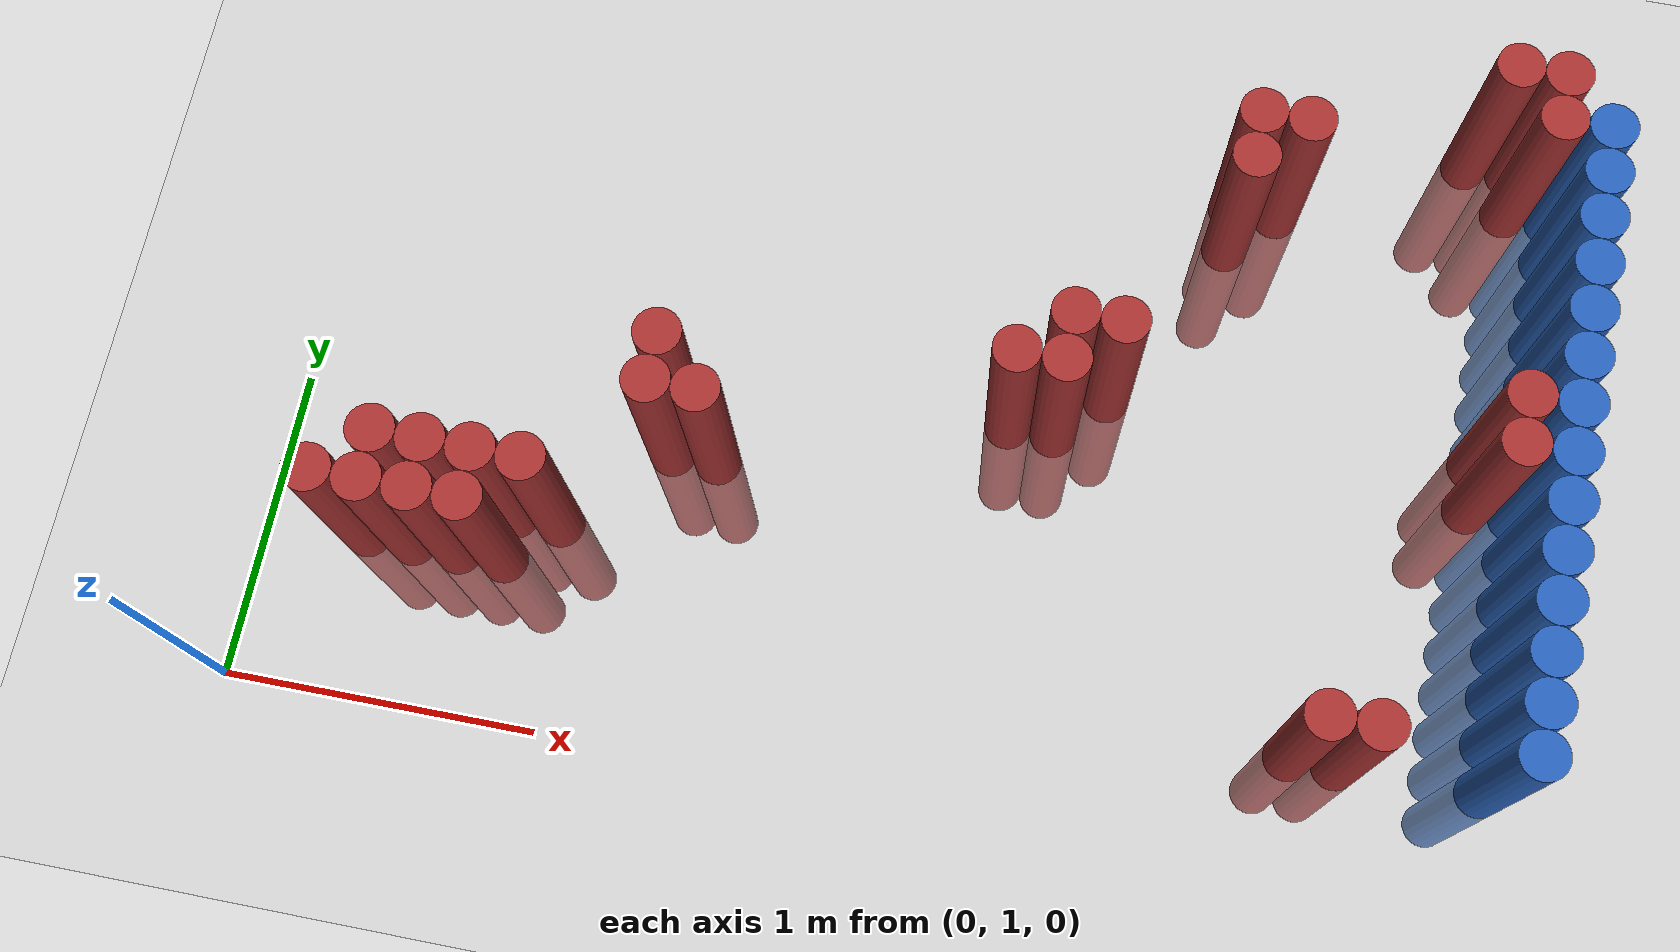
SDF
<sdf version="1.6">
 <world name="default">
  <model name="ground_plane">
   <static>1</static>
   <link name="link">
    <collision name="collision">
     <geometry><plane><normal>0 0 1</normal><size>100 100</size></plane></geometry>
     <surface><friction><ode><mu>100</mu><mu2>50</mu2></ode></friction></surface>
    </collision>
    <visual name="visual">
     <cast_shadows>0</cast_shadows>
     <geometry><plane><normal>0 0 1</normal><size>100 100</size></plane></geometry>
     <material>
      <script><uri>file://media/materials/scripts/gazebo.material</uri><name>Gazebo/Grey</name></script>
     </material>
    </visual>
   </link>
  </model>
  <model name="unit_cylinder_134">
   <static>1</static>
   <pose>3.925000 1.525000 0.000000 0.000000 0.000000 0.000000</pose>
   <link name="link">
    <inertial>
     <mass>1</mass>
     <inertia><ixx>0.145833</ixx><ixy>0</ixy><ixz>0</ixz><iyy>0.145833</iyy><iyz>0</iyz><izz>0.125</izz></inertia>
    </inertial>
    <collision name="collision">
     <geometry><cylinder><radius>0.075000</radius><length>1.5</length></cylinder></geometry>
    </collision>
    <visual name="visual">
     <geometry><cylinder><radius>0.075000</radius><length>1.5</length></cylinder></geometry>
     <material>
      <ambient>0.152000 0.379000 0.720000 1</ambient>
      <diffuse>0.152000 0.379000 0.720000 1</diffuse>
     </material>
     <material>
      <script><name>Gazebo/Grey</name><uri>file://media/materials/scripts/gazebo.material</uri></script>
     </material>
    </visual>
   </link>
  </model>
  <model name="unit_cylinder_136">
   <static>1</static>
   <pose>3.925000 1.675000 0.000000 0.000000 0.000000 0.000000</pose>
   <link name="link">
    <inertial>
     <mass>1</mass>
     <inertia><ixx>0.145833</ixx><ixy>0</ixy><ixz>0</ixz><iyy>0.145833</iyy><iyz>0</iyz><izz>0.125</izz></inertia>
    </inertial>
    <collision name="collision">
     <geometry><cylinder><radius>0.075000</radius><length>1.5</length></cylinder></geometry>
    </collision>
    <visual name="visual">
     <geometry><cylinder><radius>0.075000</radius><length>1.5</length></cylinder></geometry>
     <material>
      <ambient>0.152000 0.379000 0.720000 1</ambient>
      <diffuse>0.152000 0.379000 0.720000 1</diffuse>
     </material>
     <material>
      <script><name>Gazebo/Grey</name><uri>file://media/materials/scripts/gazebo.material</uri></script>
     </material>
    </visual>
   </link>
  </model>
  <model name="unit_cylinder_138">
   <static>1</static>
   <pose>3.925000 1.825000 0.000000 0.000000 0.000000 0.000000</pose>
   <link name="link">
    <inertial>
     <mass>1</mass>
     <inertia><ixx>0.145833</ixx><ixy>0</ixy><ixz>0</ixz><iyy>0.145833</iyy><iyz>0</iyz><izz>0.125</izz></inertia>
    </inertial>
    <collision name="collision">
     <geometry><cylinder><radius>0.075000</radius><length>1.5</length></cylinder></geometry>
    </collision>
    <visual name="visual">
     <geometry><cylinder><radius>0.075000</radius><length>1.5</length></cylinder></geometry>
     <material>
      <ambient>0.152000 0.379000 0.720000 1</ambient>
      <diffuse>0.152000 0.379000 0.720000 1</diffuse>
     </material>
     <material>
      <script><name>Gazebo/Grey</name><uri>file://media/materials/scripts/gazebo.material</uri></script>
     </material>
    </visual>
   </link>
  </model>
  <model name="unit_cylinder_140">
   <static>1</static>
   <pose>3.925000 1.975000 0.000000 0.000000 0.000000 0.000000</pose>
   <link name="link">
    <inertial>
     <mass>1</mass>
     <inertia><ixx>0.145833</ixx><ixy>0</ixy><ixz>0</ixz><iyy>0.145833</iyy><iyz>0</iyz><izz>0.125</izz></inertia>
    </inertial>
    <collision name="collision">
     <geometry><cylinder><radius>0.075000</radius><length>1.5</length></cylinder></geometry>
    </collision>
    <visual name="visual">
     <geometry><cylinder><radius>0.075000</radius><length>1.5</length></cylinder></geometry>
     <material>
      <ambient>0.152000 0.379000 0.720000 1</ambient>
      <diffuse>0.152000 0.379000 0.720000 1</diffuse>
     </material>
     <material>
      <script><name>Gazebo/Grey</name><uri>file://media/materials/scripts/gazebo.material</uri></script>
     </material>
    </visual>
   </link>
  </model>
  <model name="unit_cylinder_142">
   <static>1</static>
   <pose>3.925000 2.125000 0.000000 0.000000 0.000000 0.000000</pose>
   <link name="link">
    <inertial>
     <mass>1</mass>
     <inertia><ixx>0.145833</ixx><ixy>0</ixy><ixz>0</ixz><iyy>0.145833</iyy><iyz>0</iyz><izz>0.125</izz></inertia>
    </inertial>
    <collision name="collision">
     <geometry><cylinder><radius>0.075000</radius><length>1.5</length></cylinder></geometry>
    </collision>
    <visual name="visual">
     <geometry><cylinder><radius>0.075000</radius><length>1.5</length></cylinder></geometry>
     <material>
      <ambient>0.152000 0.379000 0.720000 1</ambient>
      <diffuse>0.152000 0.379000 0.720000 1</diffuse>
     </material>
     <material>
      <script><name>Gazebo/Grey</name><uri>file://media/materials/scripts/gazebo.material</uri></script>
     </material>
    </visual>
   </link>
  </model>
  <model name="unit_cylinder_144">
   <static>1</static>
   <pose>3.925000 2.275000 0.000000 0.000000 0.000000 0.000000</pose>
   <link name="link">
    <inertial>
     <mass>1</mass>
     <inertia><ixx>0.145833</ixx><ixy>0</ixy><ixz>0</ixz><iyy>0.145833</iyy><iyz>0</iyz><izz>0.125</izz></inertia>
    </inertial>
    <collision name="collision">
     <geometry><cylinder><radius>0.075000</radius><length>1.5</length></cylinder></geometry>
    </collision>
    <visual name="visual">
     <geometry><cylinder><radius>0.075000</radius><length>1.5</length></cylinder></geometry>
     <material>
      <ambient>0.152000 0.379000 0.720000 1</ambient>
      <diffuse>0.152000 0.379000 0.720000 1</diffuse>
     </material>
     <material>
      <script><name>Gazebo/Grey</name><uri>file://media/materials/scripts/gazebo.material</uri></script>
     </material>
    </visual>
   </link>
  </model>
  <model name="unit_cylinder_146">
   <static>1</static>
   <pose>3.925000 2.425000 0.000000 0.000000 0.000000 0.000000</pose>
   <link name="link">
    <inertial>
     <mass>1</mass>
     <inertia><ixx>0.145833</ixx><ixy>0</ixy><ixz>0</ixz><iyy>0.145833</iyy><iyz>0</iyz><izz>0.125</izz></inertia>
    </inertial>
    <collision name="collision">
     <geometry><cylinder><radius>0.075000</radius><length>1.5</length></cylinder></geometry>
    </collision>
    <visual name="visual">
     <geometry><cylinder><radius>0.075000</radius><length>1.5</length></cylinder></geometry>
     <material>
      <ambient>0.152000 0.379000 0.720000 1</ambient>
      <diffuse>0.152000 0.379000 0.720000 1</diffuse>
     </material>
     <material>
      <script><name>Gazebo/Grey</name><uri>file://media/materials/scripts/gazebo.material</uri></script>
     </material>
    </visual>
   </link>
  </model>
  <model name="unit_cylinder_148">
   <static>1</static>
   <pose>3.925000 2.575000 0.000000 0.000000 0.000000 0.000000</pose>
   <link name="link">
    <inertial>
     <mass>1</mass>
     <inertia><ixx>0.145833</ixx><ixy>0</ixy><ixz>0</ixz><iyy>0.145833</iyy><iyz>0</iyz><izz>0.125</izz></inertia>
    </inertial>
    <collision name="collision">
     <geometry><cylinder><radius>0.075000</radius><length>1.5</length></cylinder></geometry>
    </collision>
    <visual name="visual">
     <geometry><cylinder><radius>0.075000</radius><length>1.5</length></cylinder></geometry>
     <material>
      <ambient>0.152000 0.379000 0.720000 1</ambient>
      <diffuse>0.152000 0.379000 0.720000 1</diffuse>
     </material>
     <material>
      <script><name>Gazebo/Grey</name><uri>file://media/materials/scripts/gazebo.material</uri></script>
     </material>
    </visual>
   </link>
  </model>
  <model name="unit_cylinder_150">
   <static>1</static>
   <pose>3.925000 2.725000 0.000000 0.000000 0.000000 0.000000</pose>
   <link name="link">
    <inertial>
     <mass>1</mass>
     <inertia><ixx>0.145833</ixx><ixy>0</ixy><ixz>0</ixz><iyy>0.145833</iyy><iyz>0</iyz><izz>0.125</izz></inertia>
    </inertial>
    <collision name="collision">
     <geometry><cylinder><radius>0.075000</radius><length>1.5</length></cylinder></geometry>
    </collision>
    <visual name="visual">
     <geometry><cylinder><radius>0.075000</radius><length>1.5</length></cylinder></geometry>
     <material>
      <ambient>0.152000 0.379000 0.720000 1</ambient>
      <diffuse>0.152000 0.379000 0.720000 1</diffuse>
     </material>
     <material>
      <script><name>Gazebo/Grey</name><uri>file://media/materials/scripts/gazebo.material</uri></script>
     </material>
    </visual>
   </link>
  </model>
  <model name="unit_cylinder_152">
   <static>1</static>
   <pose>3.925000 2.875000 0.000000 0.000000 0.000000 0.000000</pose>
   <link name="link">
    <inertial>
     <mass>1</mass>
     <inertia><ixx>0.145833</ixx><ixy>0</ixy><ixz>0</ixz><iyy>0.145833</iyy><iyz>0</iyz><izz>0.125</izz></inertia>
    </inertial>
    <collision name="collision">
     <geometry><cylinder><radius>0.075000</radius><length>1.5</length></cylinder></geometry>
    </collision>
    <visual name="visual">
     <geometry><cylinder><radius>0.075000</radius><length>1.5</length></cylinder></geometry>
     <material>
      <ambient>0.152000 0.379000 0.720000 1</ambient>
      <diffuse>0.152000 0.379000 0.720000 1</diffuse>
     </material>
     <material>
      <script><name>Gazebo/Grey</name><uri>file://media/materials/scripts/gazebo.material</uri></script>
     </material>
    </visual>
   </link>
  </model>
  <model name="unit_cylinder_154">
   <static>1</static>
   <pose>3.925000 3.025000 0.000000 0.000000 0.000000 0.000000</pose>
   <link name="link">
    <inertial>
     <mass>1</mass>
     <inertia><ixx>0.145833</ixx><ixy>0</ixy><ixz>0</ixz><iyy>0.145833</iyy><iyz>0</iyz><izz>0.125</izz></inertia>
    </inertial>
    <collision name="collision">
     <geometry><cylinder><radius>0.075000</radius><length>1.5</length></cylinder></geometry>
    </collision>
    <visual name="visual">
     <geometry><cylinder><radius>0.075000</radius><length>1.5</length></cylinder></geometry>
     <material>
      <ambient>0.152000 0.379000 0.720000 1</ambient>
      <diffuse>0.152000 0.379000 0.720000 1</diffuse>
     </material>
     <material>
      <script><name>Gazebo/Grey</name><uri>file://media/materials/scripts/gazebo.material</uri></script>
     </material>
    </visual>
   </link>
  </model>
  <model name="unit_cylinder_156">
   <static>1</static>
   <pose>3.925000 3.175000 0.000000 0.000000 0.000000 0.000000</pose>
   <link name="link">
    <inertial>
     <mass>1</mass>
     <inertia><ixx>0.145833</ixx><ixy>0</ixy><ixz>0</ixz><iyy>0.145833</iyy><iyz>0</iyz><izz>0.125</izz></inertia>
    </inertial>
    <collision name="collision">
     <geometry><cylinder><radius>0.075000</radius><length>1.5</length></cylinder></geometry>
    </collision>
    <visual name="visual">
     <geometry><cylinder><radius>0.075000</radius><length>1.5</length></cylinder></geometry>
     <material>
      <ambient>0.152000 0.379000 0.720000 1</ambient>
      <diffuse>0.152000 0.379000 0.720000 1</diffuse>
     </material>
     <material>
      <script><name>Gazebo/Grey</name><uri>file://media/materials/scripts/gazebo.material</uri></script>
     </material>
    </visual>
   </link>
  </model>
  <model name="unit_cylinder_158">
   <static>1</static>
   <pose>3.925000 3.325000 0.000000 0.000000 0.000000 0.000000</pose>
   <link name="link">
    <inertial>
     <mass>1</mass>
     <inertia><ixx>0.145833</ixx><ixy>0</ixy><ixz>0</ixz><iyy>0.145833</iyy><iyz>0</iyz><izz>0.125</izz></inertia>
    </inertial>
    <collision name="collision">
     <geometry><cylinder><radius>0.075000</radius><length>1.5</length></cylinder></geometry>
    </collision>
    <visual name="visual">
     <geometry><cylinder><radius>0.075000</radius><length>1.5</length></cylinder></geometry>
     <material>
      <ambient>0.152000 0.379000 0.720000 1</ambient>
      <diffuse>0.152000 0.379000 0.720000 1</diffuse>
     </material>
     <material>
      <script><name>Gazebo/Grey</name><uri>file://media/materials/scripts/gazebo.material</uri></script>
     </material>
    </visual>
   </link>
  </model>
  <model name="unit_cylinder_387">
   <static>1</static>
   <pose>0.325000 1.525000 0.000000 0.000000 0.000000 0.000000</pose>
   <link name="link">
    <inertial>
     <mass>1</mass>
     <inertia><ixx>0.145833</ixx><ixy>0</ixy><ixz>0</ixz><iyy>0.145833</iyy><iyz>0</iyz><izz>0.125</izz></inertia>
    </inertial>
    <collision name="collision">
     <geometry><cylinder><radius>0.075000</radius><length>1.5</length></cylinder></geometry>
    </collision>
    <visual name="visual">
     <geometry><cylinder><radius>0.075000</radius><length>1.5</length></cylinder></geometry>
     <material>
      <ambient>0.648000 0.192000 0.192000 1</ambient>
      <diffuse>0.648000 0.192000 0.192000 1</diffuse>
     </material>
     <material>
      <script><name>Gazebo/Grey</name><uri>file://media/materials/scripts/gazebo.material</uri></script>
     </material>
    </visual>
   </link>
  </model>
  <model name="unit_cylinder_390">
   <static>1</static>
   <pose>0.475000 1.525000 0.000000 0.000000 0.000000 0.000000</pose>
   <link name="link">
    <inertial>
     <mass>1</mass>
     <inertia><ixx>0.145833</ixx><ixy>0</ixy><ixz>0</ixz><iyy>0.145833</iyy><iyz>0</iyz><izz>0.125</izz></inertia>
    </inertial>
    <collision name="collision">
     <geometry><cylinder><radius>0.075000</radius><length>1.5</length></cylinder></geometry>
    </collision>
    <visual name="visual">
     <geometry><cylinder><radius>0.075000</radius><length>1.5</length></cylinder></geometry>
     <material>
      <ambient>0.648000 0.192000 0.192000 1</ambient>
      <diffuse>0.648000 0.192000 0.192000 1</diffuse>
     </material>
     <material>
      <script><name>Gazebo/Grey</name><uri>file://media/materials/scripts/gazebo.material</uri></script>
     </material>
    </visual>
   </link>
  </model>
  <model name="unit_cylinder_391">
   <static>1</static>
   <pose>0.475000 1.675000 0.000000 0.000000 0.000000 0.000000</pose>
   <link name="link">
    <inertial>
     <mass>1</mass>
     <inertia><ixx>0.145833</ixx><ixy>0</ixy><ixz>0</ixz><iyy>0.145833</iyy><iyz>0</iyz><izz>0.125</izz></inertia>
    </inertial>
    <collision name="collision">
     <geometry><cylinder><radius>0.075000</radius><length>1.5</length></cylinder></geometry>
    </collision>
    <visual name="visual">
     <geometry><cylinder><radius>0.075000</radius><length>1.5</length></cylinder></geometry>
     <material>
      <ambient>0.648000 0.192000 0.192000 1</ambient>
      <diffuse>0.648000 0.192000 0.192000 1</diffuse>
     </material>
     <material>
      <script><name>Gazebo/Grey</name><uri>file://media/materials/scripts/gazebo.material</uri></script>
     </material>
    </visual>
   </link>
  </model>
  <model name="unit_cylinder_394">
   <static>1</static>
   <pose>0.625000 1.525000 0.000000 0.000000 0.000000 0.000000</pose>
   <link name="link">
    <inertial>
     <mass>1</mass>
     <inertia><ixx>0.145833</ixx><ixy>0</ixy><ixz>0</ixz><iyy>0.145833</iyy><iyz>0</iyz><izz>0.125</izz></inertia>
    </inertial>
    <collision name="collision">
     <geometry><cylinder><radius>0.075000</radius><length>1.5</length></cylinder></geometry>
    </collision>
    <visual name="visual">
     <geometry><cylinder><radius>0.075000</radius><length>1.5</length></cylinder></geometry>
     <material>
      <ambient>0.648000 0.192000 0.192000 1</ambient>
      <diffuse>0.648000 0.192000 0.192000 1</diffuse>
     </material>
     <material>
      <script><name>Gazebo/Grey</name><uri>file://media/materials/scripts/gazebo.material</uri></script>
     </material>
    </visual>
   </link>
  </model>
  <model name="unit_cylinder_395">
   <static>1</static>
   <pose>0.625000 1.675000 0.000000 0.000000 0.000000 0.000000</pose>
   <link name="link">
    <inertial>
     <mass>1</mass>
     <inertia><ixx>0.145833</ixx><ixy>0</ixy><ixz>0</ixz><iyy>0.145833</iyy><iyz>0</iyz><izz>0.125</izz></inertia>
    </inertial>
    <collision name="collision">
     <geometry><cylinder><radius>0.075000</radius><length>1.5</length></cylinder></geometry>
    </collision>
    <visual name="visual">
     <geometry><cylinder><radius>0.075000</radius><length>1.5</length></cylinder></geometry>
     <material>
      <ambient>0.648000 0.192000 0.192000 1</ambient>
      <diffuse>0.648000 0.192000 0.192000 1</diffuse>
     </material>
     <material>
      <script><name>Gazebo/Grey</name><uri>file://media/materials/scripts/gazebo.material</uri></script>
     </material>
    </visual>
   </link>
  </model>
  <model name="unit_cylinder_398">
   <static>1</static>
   <pose>0.775000 1.525000 0.000000 0.000000 0.000000 0.000000</pose>
   <link name="link">
    <inertial>
     <mass>1</mass>
     <inertia><ixx>0.145833</ixx><ixy>0</ixy><ixz>0</ixz><iyy>0.145833</iyy><iyz>0</iyz><izz>0.125</izz></inertia>
    </inertial>
    <collision name="collision">
     <geometry><cylinder><radius>0.075000</radius><length>1.5</length></cylinder></geometry>
    </collision>
    <visual name="visual">
     <geometry><cylinder><radius>0.075000</radius><length>1.5</length></cylinder></geometry>
     <material>
      <ambient>0.648000 0.192000 0.192000 1</ambient>
      <diffuse>0.648000 0.192000 0.192000 1</diffuse>
     </material>
     <material>
      <script><name>Gazebo/Grey</name><uri>file://media/materials/scripts/gazebo.material</uri></script>
     </material>
    </visual>
   </link>
  </model>
  <model name="unit_cylinder_399">
   <static>1</static>
   <pose>0.775000 1.675000 0.000000 0.000000 0.000000 0.000000</pose>
   <link name="link">
    <inertial>
     <mass>1</mass>
     <inertia><ixx>0.145833</ixx><ixy>0</ixy><ixz>0</ixz><iyy>0.145833</iyy><iyz>0</iyz><izz>0.125</izz></inertia>
    </inertial>
    <collision name="collision">
     <geometry><cylinder><radius>0.075000</radius><length>1.5</length></cylinder></geometry>
    </collision>
    <visual name="visual">
     <geometry><cylinder><radius>0.075000</radius><length>1.5</length></cylinder></geometry>
     <material>
      <ambient>0.648000 0.192000 0.192000 1</ambient>
      <diffuse>0.648000 0.192000 0.192000 1</diffuse>
     </material>
     <material>
      <script><name>Gazebo/Grey</name><uri>file://media/materials/scripts/gazebo.material</uri></script>
     </material>
    </visual>
   </link>
  </model>
  <model name="unit_cylinder_403">
   <static>1</static>
   <pose>0.925000 1.675000 0.000000 0.000000 0.000000 0.000000</pose>
   <link name="link">
    <inertial>
     <mass>1</mass>
     <inertia><ixx>0.145833</ixx><ixy>0</ixy><ixz>0</ixz><iyy>0.145833</iyy><iyz>0</iyz><izz>0.125</izz></inertia>
    </inertial>
    <collision name="collision">
     <geometry><cylinder><radius>0.075000</radius><length>1.5</length></cylinder></geometry>
    </collision>
    <visual name="visual">
     <geometry><cylinder><radius>0.075000</radius><length>1.5</length></cylinder></geometry>
     <material>
      <ambient>0.648000 0.192000 0.192000 1</ambient>
      <diffuse>0.648000 0.192000 0.192000 1</diffuse>
     </material>
     <material>
      <script><name>Gazebo/Grey</name><uri>file://media/materials/scripts/gazebo.material</uri></script>
     </material>
    </visual>
   </link>
  </model>
  <model name="unit_cylinder_411">
   <static>1</static>
   <pose>1.225000 1.975000 0.000000 0.000000 0.000000 0.000000</pose>
   <link name="link">
    <inertial>
     <mass>1</mass>
     <inertia><ixx>0.145833</ixx><ixy>0</ixy><ixz>0</ixz><iyy>0.145833</iyy><iyz>0</iyz><izz>0.125</izz></inertia>
    </inertial>
    <collision name="collision">
     <geometry><cylinder><radius>0.075000</radius><length>1.5</length></cylinder></geometry>
    </collision>
    <visual name="visual">
     <geometry><cylinder><radius>0.075000</radius><length>1.5</length></cylinder></geometry>
     <material>
      <ambient>0.648000 0.192000 0.192000 1</ambient>
      <diffuse>0.648000 0.192000 0.192000 1</diffuse>
     </material>
     <material>
      <script><name>Gazebo/Grey</name><uri>file://media/materials/scripts/gazebo.material</uri></script>
     </material>
    </visual>
   </link>
  </model>
  <model name="unit_cylinder_412">
   <static>1</static>
   <pose>1.225000 2.125000 0.000000 0.000000 0.000000 0.000000</pose>
   <link name="link">
    <inertial>
     <mass>1</mass>
     <inertia><ixx>0.145833</ixx><ixy>0</ixy><ixz>0</ixz><iyy>0.145833</iyy><iyz>0</iyz><izz>0.125</izz></inertia>
    </inertial>
    <collision name="collision">
     <geometry><cylinder><radius>0.075000</radius><length>1.5</length></cylinder></geometry>
    </collision>
    <visual name="visual">
     <geometry><cylinder><radius>0.075000</radius><length>1.5</length></cylinder></geometry>
     <material>
      <ambient>0.648000 0.192000 0.192000 1</ambient>
      <diffuse>0.648000 0.192000 0.192000 1</diffuse>
     </material>
     <material>
      <script><name>Gazebo/Grey</name><uri>file://media/materials/scripts/gazebo.material</uri></script>
     </material>
    </visual>
   </link>
  </model>
  <model name="unit_cylinder_416">
   <static>1</static>
   <pose>1.375000 1.975000 0.000000 0.000000 0.000000 0.000000</pose>
   <link name="link">
    <inertial>
     <mass>1</mass>
     <inertia><ixx>0.145833</ixx><ixy>0</ixy><ixz>0</ixz><iyy>0.145833</iyy><iyz>0</iyz><izz>0.125</izz></inertia>
    </inertial>
    <collision name="collision">
     <geometry><cylinder><radius>0.075000</radius><length>1.5</length></cylinder></geometry>
    </collision>
    <visual name="visual">
     <geometry><cylinder><radius>0.075000</radius><length>1.5</length></cylinder></geometry>
     <material>
      <ambient>0.648000 0.192000 0.192000 1</ambient>
      <diffuse>0.648000 0.192000 0.192000 1</diffuse>
     </material>
     <material>
      <script><name>Gazebo/Grey</name><uri>file://media/materials/scripts/gazebo.material</uri></script>
     </material>
    </visual>
   </link>
  </model>
  <model name="unit_cylinder_421">
   <static>1</static>
   <pose>2.275000 2.275000 0.000000 0.000000 0.000000 0.000000</pose>
   <link name="link">
    <inertial>
     <mass>1</mass>
     <inertia><ixx>0.145833</ixx><ixy>0</ixy><ixz>0</ixz><iyy>0.145833</iyy><iyz>0</iyz><izz>0.125</izz></inertia>
    </inertial>
    <collision name="collision">
     <geometry><cylinder><radius>0.075000</radius><length>1.5</length></cylinder></geometry>
    </collision>
    <visual name="visual">
     <geometry><cylinder><radius>0.075000</radius><length>1.5</length></cylinder></geometry>
     <material>
      <ambient>0.648000 0.192000 0.192000 1</ambient>
      <diffuse>0.648000 0.192000 0.192000 1</diffuse>
     </material>
     <material>
      <script><name>Gazebo/Grey</name><uri>file://media/materials/scripts/gazebo.material</uri></script>
     </material>
    </visual>
   </link>
  </model>
  <model name="unit_cylinder_424">
   <static>1</static>
   <pose>2.425000 2.275000 0.000000 0.000000 0.000000 0.000000</pose>
   <link name="link">
    <inertial>
     <mass>1</mass>
     <inertia><ixx>0.145833</ixx><ixy>0</ixy><ixz>0</ixz><iyy>0.145833</iyy><iyz>0</iyz><izz>0.125</izz></inertia>
    </inertial>
    <collision name="collision">
     <geometry><cylinder><radius>0.075000</radius><length>1.5</length></cylinder></geometry>
    </collision>
    <visual name="visual">
     <geometry><cylinder><radius>0.075000</radius><length>1.5</length></cylinder></geometry>
     <material>
      <ambient>0.648000 0.192000 0.192000 1</ambient>
      <diffuse>0.648000 0.192000 0.192000 1</diffuse>
     </material>
     <material>
      <script><name>Gazebo/Grey</name><uri>file://media/materials/scripts/gazebo.material</uri></script>
     </material>
    </visual>
   </link>
  </model>
  <model name="unit_cylinder_425">
   <static>1</static>
   <pose>2.425000 2.425000 0.000000 0.000000 0.000000 0.000000</pose>
   <link name="link">
    <inertial>
     <mass>1</mass>
     <inertia><ixx>0.145833</ixx><ixy>0</ixy><ixz>0</ixz><iyy>0.145833</iyy><iyz>0</iyz><izz>0.125</izz></inertia>
    </inertial>
    <collision name="collision">
     <geometry><cylinder><radius>0.075000</radius><length>1.5</length></cylinder></geometry>
    </collision>
    <visual name="visual">
     <geometry><cylinder><radius>0.075000</radius><length>1.5</length></cylinder></geometry>
     <material>
      <ambient>0.648000 0.192000 0.192000 1</ambient>
      <diffuse>0.648000 0.192000 0.192000 1</diffuse>
     </material>
     <material>
      <script><name>Gazebo/Grey</name><uri>file://media/materials/scripts/gazebo.material</uri></script>
     </material>
    </visual>
   </link>
  </model>
  <model name="unit_cylinder_427">
   <static>1</static>
   <pose>2.575000 2.425000 0.000000 0.000000 0.000000 0.000000</pose>
   <link name="link">
    <inertial>
     <mass>1</mass>
     <inertia><ixx>0.145833</ixx><ixy>0</ixy><ixz>0</ixz><iyy>0.145833</iyy><iyz>0</iyz><izz>0.125</izz></inertia>
    </inertial>
    <collision name="collision">
     <geometry><cylinder><radius>0.075000</radius><length>1.5</length></cylinder></geometry>
    </collision>
    <visual name="visual">
     <geometry><cylinder><radius>0.075000</radius><length>1.5</length></cylinder></geometry>
     <material>
      <ambient>0.648000 0.192000 0.192000 1</ambient>
      <diffuse>0.648000 0.192000 0.192000 1</diffuse>
     </material>
     <material>
      <script><name>Gazebo/Grey</name><uri>file://media/materials/scripts/gazebo.material</uri></script>
     </material>
    </visual>
   </link>
  </model>
  <model name="unit_cylinder_428">
   <static>1</static>
   <pose>2.875000 3.025000 0.000000 0.000000 0.000000 0.000000</pose>
   <link name="link">
    <inertial>
     <mass>1</mass>
     <inertia><ixx>0.145833</ixx><ixy>0</ixy><ixz>0</ixz><iyy>0.145833</iyy><iyz>0</iyz><izz>0.125</izz></inertia>
    </inertial>
    <collision name="collision">
     <geometry><cylinder><radius>0.075000</radius><length>1.5</length></cylinder></geometry>
    </collision>
    <visual name="visual">
     <geometry><cylinder><radius>0.075000</radius><length>1.5</length></cylinder></geometry>
     <material>
      <ambient>0.648000 0.192000 0.192000 1</ambient>
      <diffuse>0.648000 0.192000 0.192000 1</diffuse>
     </material>
     <material>
      <script><name>Gazebo/Grey</name><uri>file://media/materials/scripts/gazebo.material</uri></script>
     </material>
    </visual>
   </link>
  </model>
  <model name="unit_cylinder_429">
   <static>1</static>
   <pose>2.875000 3.175000 0.000000 0.000000 0.000000 0.000000</pose>
   <link name="link">
    <inertial>
     <mass>1</mass>
     <inertia><ixx>0.145833</ixx><ixy>0</ixy><ixz>0</ixz><iyy>0.145833</iyy><iyz>0</iyz><izz>0.125</izz></inertia>
    </inertial>
    <collision name="collision">
     <geometry><cylinder><radius>0.075000</radius><length>1.5</length></cylinder></geometry>
    </collision>
    <visual name="visual">
     <geometry><cylinder><radius>0.075000</radius><length>1.5</length></cylinder></geometry>
     <material>
      <ambient>0.648000 0.192000 0.192000 1</ambient>
      <diffuse>0.648000 0.192000 0.192000 1</diffuse>
     </material>
     <material>
      <script><name>Gazebo/Grey</name><uri>file://media/materials/scripts/gazebo.material</uri></script>
     </material>
    </visual>
   </link>
  </model>
  <model name="unit_cylinder_430">
   <static>1</static>
   <pose>3.025000 3.175000 0.000000 0.000000 0.000000 0.000000</pose>
   <link name="link">
    <inertial>
     <mass>1</mass>
     <inertia><ixx>0.145833</ixx><ixy>0</ixy><ixz>0</ixz><iyy>0.145833</iyy><iyz>0</iyz><izz>0.125</izz></inertia>
    </inertial>
    <collision name="collision">
     <geometry><cylinder><radius>0.075000</radius><length>1.5</length></cylinder></geometry>
    </collision>
    <visual name="visual">
     <geometry><cylinder><radius>0.075000</radius><length>1.5</length></cylinder></geometry>
     <material>
      <ambient>0.648000 0.192000 0.192000 1</ambient>
      <diffuse>0.648000 0.192000 0.192000 1</diffuse>
     </material>
     <material>
      <script><name>Gazebo/Grey</name><uri>file://media/materials/scripts/gazebo.material</uri></script>
     </material>
    </visual>
   </link>
  </model>
  <model name="unit_cylinder_440">
   <static>1</static>
   <pose>3.325000 1.375000 0.000000 0.000000 0.000000 0.000000</pose>
   <link name="link">
    <inertial>
     <mass>1</mass>
     <inertia><ixx>0.145833</ixx><ixy>0</ixy><ixz>0</ixz><iyy>0.145833</iyy><iyz>0</iyz><izz>0.125</izz></inertia>
    </inertial>
    <collision name="collision">
     <geometry><cylinder><radius>0.075000</radius><length>1.5</length></cylinder></geometry>
    </collision>
    <visual name="visual">
     <geometry><cylinder><radius>0.075000</radius><length>1.5</length></cylinder></geometry>
     <material>
      <ambient>0.648000 0.192000 0.192000 1</ambient>
      <diffuse>0.648000 0.192000 0.192000 1</diffuse>
     </material>
     <material>
      <script><name>Gazebo/Grey</name><uri>file://media/materials/scripts/gazebo.material</uri></script>
     </material>
    </visual>
   </link>
  </model>
  <model name="unit_cylinder_445">
   <static>1</static>
   <pose>3.475000 1.375000 0.000000 0.000000 0.000000 0.000000</pose>
   <link name="link">
    <inertial>
     <mass>1</mass>
     <inertia><ixx>0.145833</ixx><ixy>0</ixy><ixz>0</ixz><iyy>0.145833</iyy><iyz>0</iyz><izz>0.125</izz></inertia>
    </inertial>
    <collision name="collision">
     <geometry><cylinder><radius>0.075000</radius><length>1.5</length></cylinder></geometry>
    </collision>
    <visual name="visual">
     <geometry><cylinder><radius>0.075000</radius><length>1.5</length></cylinder></geometry>
     <material>
      <ambient>0.648000 0.192000 0.192000 1</ambient>
      <diffuse>0.648000 0.192000 0.192000 1</diffuse>
     </material>
     <material>
      <script><name>Gazebo/Grey</name><uri>file://media/materials/scripts/gazebo.material</uri></script>
     </material>
    </visual>
   </link>
  </model>
  <model name="unit_cylinder_450">
   <static>1</static>
   <pose>3.625000 3.475000 0.000000 0.000000 0.000000 0.000000</pose>
   <link name="link">
    <inertial>
     <mass>1</mass>
     <inertia><ixx>0.145833</ixx><ixy>0</ixy><ixz>0</ixz><iyy>0.145833</iyy><iyz>0</iyz><izz>0.125</izz></inertia>
    </inertial>
    <collision name="collision">
     <geometry><cylinder><radius>0.075000</radius><length>1.5</length></cylinder></geometry>
    </collision>
    <visual name="visual">
     <geometry><cylinder><radius>0.075000</radius><length>1.5</length></cylinder></geometry>
     <material>
      <ambient>0.648000 0.192000 0.192000 1</ambient>
      <diffuse>0.648000 0.192000 0.192000 1</diffuse>
     </material>
     <material>
      <script><name>Gazebo/Grey</name><uri>file://media/materials/scripts/gazebo.material</uri></script>
     </material>
    </visual>
   </link>
  </model>
  <model name="unit_cylinder_463">
   <static>1</static>
   <pose>3.775000 2.275000 0.000000 0.000000 0.000000 0.000000</pose>
   <link name="link">
    <inertial>
     <mass>1</mass>
     <inertia><ixx>0.145833</ixx><ixy>0</ixy><ixz>0</ixz><iyy>0.145833</iyy><iyz>0</iyz><izz>0.125</izz></inertia>
    </inertial>
    <collision name="collision">
     <geometry><cylinder><radius>0.075000</radius><length>1.5</length></cylinder></geometry>
    </collision>
    <visual name="visual">
     <geometry><cylinder><radius>0.075000</radius><length>1.5</length></cylinder></geometry>
     <material>
      <ambient>0.648000 0.192000 0.192000 1</ambient>
      <diffuse>0.648000 0.192000 0.192000 1</diffuse>
     </material>
     <material>
      <script><name>Gazebo/Grey</name><uri>file://media/materials/scripts/gazebo.material</uri></script>
     </material>
    </visual>
   </link>
  </model>
  <model name="unit_cylinder_464">
   <static>1</static>
   <pose>3.775000 2.425000 0.000000 0.000000 0.000000 0.000000</pose>
   <link name="link">
    <inertial>
     <mass>1</mass>
     <inertia><ixx>0.145833</ixx><ixy>0</ixy><ixz>0</ixz><iyy>0.145833</iyy><iyz>0</iyz><izz>0.125</izz></inertia>
    </inertial>
    <collision name="collision">
     <geometry><cylinder><radius>0.075000</radius><length>1.5</length></cylinder></geometry>
    </collision>
    <visual name="visual">
     <geometry><cylinder><radius>0.075000</radius><length>1.5</length></cylinder></geometry>
     <material>
      <ambient>0.648000 0.192000 0.192000 1</ambient>
      <diffuse>0.648000 0.192000 0.192000 1</diffuse>
     </material>
     <material>
      <script><name>Gazebo/Grey</name><uri>file://media/materials/scripts/gazebo.material</uri></script>
     </material>
    </visual>
   </link>
  </model>
  <model name="unit_cylinder_465">
   <static>1</static>
   <pose>3.775000 3.325000 0.000000 0.000000 0.000000 0.000000</pose>
   <link name="link">
    <inertial>
     <mass>1</mass>
     <inertia><ixx>0.145833</ixx><ixy>0</ixy><ixz>0</ixz><iyy>0.145833</iyy><iyz>0</iyz><izz>0.125</izz></inertia>
    </inertial>
    <collision name="collision">
     <geometry><cylinder><radius>0.075000</radius><length>1.5</length></cylinder></geometry>
    </collision>
    <visual name="visual">
     <geometry><cylinder><radius>0.075000</radius><length>1.5</length></cylinder></geometry>
     <material>
      <ambient>0.648000 0.192000 0.192000 1</ambient>
      <diffuse>0.648000 0.192000 0.192000 1</diffuse>
     </material>
     <material>
      <script><name>Gazebo/Grey</name><uri>file://media/materials/scripts/gazebo.material</uri></script>
     </material>
    </visual>
   </link>
  </model>
  <model name="unit_cylinder_466">
   <static>1</static>
   <pose>3.775000 3.475000 0.000000 0.000000 0.000000 0.000000</pose>
   <link name="link">
    <inertial>
     <mass>1</mass>
     <inertia><ixx>0.145833</ixx><ixy>0</ixy><ixz>0</ixz><iyy>0.145833</iyy><iyz>0</iyz><izz>0.125</izz></inertia>
    </inertial>
    <collision name="collision">
     <geometry><cylinder><radius>0.075000</radius><length>1.5</length></cylinder></geometry>
    </collision>
    <visual name="visual">
     <geometry><cylinder><radius>0.075000</radius><length>1.5</length></cylinder></geometry>
     <material>
      <ambient>0.648000 0.192000 0.192000 1</ambient>
      <diffuse>0.648000 0.192000 0.192000 1</diffuse>
     </material>
     <material>
      <script><name>Gazebo/Grey</name><uri>file://media/materials/scripts/gazebo.material</uri></script>
     </material>
    </visual>
   </link>
  </model>
  <model name="unit_cylinder_494">
   <static>1</static>
   <pose>3.925000 1.375000 0.000000 0.000000 0.000000 0.000000</pose>
   <link name="link">
    <inertial>
     <mass>1</mass>
     <inertia><ixx>0.145833</ixx><ixy>0</ixy><ixz>0</ixz><iyy>0.145833</iyy><iyz>0</iyz><izz>0.125</izz></inertia>
    </inertial>
    <collision name="collision">
     <geometry><cylinder><radius>0.075000</radius><length>1.5</length></cylinder></geometry>
    </collision>
    <visual name="visual">
     <geometry><cylinder><radius>0.075000</radius><length>1.5</length></cylinder></geometry>
     <material>
      <ambient>0.152000 0.379000 0.720000 1</ambient>
      <diffuse>0.152000 0.379000 0.720000 1</diffuse>
     </material>
     <material>
      <script><name>Gazebo/Grey</name><uri>file://media/materials/scripts/gazebo.material</uri></script>
     </material>
    </visual>
   </link>
  </model>
  <model name="unit_cylinder_495">
   <static>1</static>
   <pose>3.925000 1.525000 0.000000 0.000000 0.000000 0.000000</pose>
   <link name="link">
    <inertial>
     <mass>1</mass>
     <inertia><ixx>0.145833</ixx><ixy>0</ixy><ixz>0</ixz><iyy>0.145833</iyy><iyz>0</iyz><izz>0.125</izz></inertia>
    </inertial>
    <collision name="collision">
     <geometry><cylinder><radius>0.075000</radius><length>1.5</length></cylinder></geometry>
    </collision>
    <visual name="visual">
     <geometry><cylinder><radius>0.075000</radius><length>1.5</length></cylinder></geometry>
     <material>
      <ambient>0.152000 0.379000 0.720000 1</ambient>
      <diffuse>0.152000 0.379000 0.720000 1</diffuse>
     </material>
     <material>
      <script><name>Gazebo/Grey</name><uri>file://media/materials/scripts/gazebo.material</uri></script>
     </material>
    </visual>
   </link>
  </model>
  <model name="unit_cylinder_496">
   <static>1</static>
   <pose>3.925000 1.675000 0.000000 0.000000 0.000000 0.000000</pose>
   <link name="link">
    <inertial>
     <mass>1</mass>
     <inertia><ixx>0.145833</ixx><ixy>0</ixy><ixz>0</ixz><iyy>0.145833</iyy><iyz>0</iyz><izz>0.125</izz></inertia>
    </inertial>
    <collision name="collision">
     <geometry><cylinder><radius>0.075000</radius><length>1.5</length></cylinder></geometry>
    </collision>
    <visual name="visual">
     <geometry><cylinder><radius>0.075000</radius><length>1.5</length></cylinder></geometry>
     <material>
      <ambient>0.152000 0.379000 0.720000 1</ambient>
      <diffuse>0.152000 0.379000 0.720000 1</diffuse>
     </material>
     <material>
      <script><name>Gazebo/Grey</name><uri>file://media/materials/scripts/gazebo.material</uri></script>
     </material>
    </visual>
   </link>
  </model>
  <model name="unit_cylinder_497">
   <static>1</static>
   <pose>3.925000 1.825000 0.000000 0.000000 0.000000 0.000000</pose>
   <link name="link">
    <inertial>
     <mass>1</mass>
     <inertia><ixx>0.145833</ixx><ixy>0</ixy><ixz>0</ixz><iyy>0.145833</iyy><iyz>0</iyz><izz>0.125</izz></inertia>
    </inertial>
    <collision name="collision">
     <geometry><cylinder><radius>0.075000</radius><length>1.5</length></cylinder></geometry>
    </collision>
    <visual name="visual">
     <geometry><cylinder><radius>0.075000</radius><length>1.5</length></cylinder></geometry>
     <material>
      <ambient>0.152000 0.379000 0.720000 1</ambient>
      <diffuse>0.152000 0.379000 0.720000 1</diffuse>
     </material>
     <material>
      <script><name>Gazebo/Grey</name><uri>file://media/materials/scripts/gazebo.material</uri></script>
     </material>
    </visual>
   </link>
  </model>
  <model name="unit_cylinder_498">
   <static>1</static>
   <pose>3.925000 1.975000 0.000000 0.000000 0.000000 0.000000</pose>
   <link name="link">
    <inertial>
     <mass>1</mass>
     <inertia><ixx>0.145833</ixx><ixy>0</ixy><ixz>0</ixz><iyy>0.145833</iyy><iyz>0</iyz><izz>0.125</izz></inertia>
    </inertial>
    <collision name="collision">
     <geometry><cylinder><radius>0.075000</radius><length>1.5</length></cylinder></geometry>
    </collision>
    <visual name="visual">
     <geometry><cylinder><radius>0.075000</radius><length>1.5</length></cylinder></geometry>
     <material>
      <ambient>0.152000 0.379000 0.720000 1</ambient>
      <diffuse>0.152000 0.379000 0.720000 1</diffuse>
     </material>
     <material>
      <script><name>Gazebo/Grey</name><uri>file://media/materials/scripts/gazebo.material</uri></script>
     </material>
    </visual>
   </link>
  </model>
  <model name="unit_cylinder_499">
   <static>1</static>
   <pose>3.925000 2.125000 0.000000 0.000000 0.000000 0.000000</pose>
   <link name="link">
    <inertial>
     <mass>1</mass>
     <inertia><ixx>0.145833</ixx><ixy>0</ixy><ixz>0</ixz><iyy>0.145833</iyy><iyz>0</iyz><izz>0.125</izz></inertia>
    </inertial>
    <collision name="collision">
     <geometry><cylinder><radius>0.075000</radius><length>1.5</length></cylinder></geometry>
    </collision>
    <visual name="visual">
     <geometry><cylinder><radius>0.075000</radius><length>1.5</length></cylinder></geometry>
     <material>
      <ambient>0.152000 0.379000 0.720000 1</ambient>
      <diffuse>0.152000 0.379000 0.720000 1</diffuse>
     </material>
     <material>
      <script><name>Gazebo/Grey</name><uri>file://media/materials/scripts/gazebo.material</uri></script>
     </material>
    </visual>
   </link>
  </model>
  <model name="unit_cylinder_500">
   <static>1</static>
   <pose>3.925000 2.275000 0.000000 0.000000 0.000000 0.000000</pose>
   <link name="link">
    <inertial>
     <mass>1</mass>
     <inertia><ixx>0.145833</ixx><ixy>0</ixy><ixz>0</ixz><iyy>0.145833</iyy><iyz>0</iyz><izz>0.125</izz></inertia>
    </inertial>
    <collision name="collision">
     <geometry><cylinder><radius>0.075000</radius><length>1.5</length></cylinder></geometry>
    </collision>
    <visual name="visual">
     <geometry><cylinder><radius>0.075000</radius><length>1.5</length></cylinder></geometry>
     <material>
      <ambient>0.152000 0.379000 0.720000 1</ambient>
      <diffuse>0.152000 0.379000 0.720000 1</diffuse>
     </material>
     <material>
      <script><name>Gazebo/Grey</name><uri>file://media/materials/scripts/gazebo.material</uri></script>
     </material>
    </visual>
   </link>
  </model>
  <model name="unit_cylinder_501">
   <static>1</static>
   <pose>3.925000 2.425000 0.000000 0.000000 0.000000 0.000000</pose>
   <link name="link">
    <inertial>
     <mass>1</mass>
     <inertia><ixx>0.145833</ixx><ixy>0</ixy><ixz>0</ixz><iyy>0.145833</iyy><iyz>0</iyz><izz>0.125</izz></inertia>
    </inertial>
    <collision name="collision">
     <geometry><cylinder><radius>0.075000</radius><length>1.5</length></cylinder></geometry>
    </collision>
    <visual name="visual">
     <geometry><cylinder><radius>0.075000</radius><length>1.5</length></cylinder></geometry>
     <material>
      <ambient>0.152000 0.379000 0.720000 1</ambient>
      <diffuse>0.152000 0.379000 0.720000 1</diffuse>
     </material>
     <material>
      <script><name>Gazebo/Grey</name><uri>file://media/materials/scripts/gazebo.material</uri></script>
     </material>
    </visual>
   </link>
  </model>
  <model name="unit_cylinder_502">
   <static>1</static>
   <pose>3.925000 2.575000 0.000000 0.000000 0.000000 0.000000</pose>
   <link name="link">
    <inertial>
     <mass>1</mass>
     <inertia><ixx>0.145833</ixx><ixy>0</ixy><ixz>0</ixz><iyy>0.145833</iyy><iyz>0</iyz><izz>0.125</izz></inertia>
    </inertial>
    <collision name="collision">
     <geometry><cylinder><radius>0.075000</radius><length>1.5</length></cylinder></geometry>
    </collision>
    <visual name="visual">
     <geometry><cylinder><radius>0.075000</radius><length>1.5</length></cylinder></geometry>
     <material>
      <ambient>0.152000 0.379000 0.720000 1</ambient>
      <diffuse>0.152000 0.379000 0.720000 1</diffuse>
     </material>
     <material>
      <script><name>Gazebo/Grey</name><uri>file://media/materials/scripts/gazebo.material</uri></script>
     </material>
    </visual>
   </link>
  </model>
  <model name="unit_cylinder_503">
   <static>1</static>
   <pose>3.925000 2.725000 0.000000 0.000000 0.000000 0.000000</pose>
   <link name="link">
    <inertial>
     <mass>1</mass>
     <inertia><ixx>0.145833</ixx><ixy>0</ixy><ixz>0</ixz><iyy>0.145833</iyy><iyz>0</iyz><izz>0.125</izz></inertia>
    </inertial>
    <collision name="collision">
     <geometry><cylinder><radius>0.075000</radius><length>1.5</length></cylinder></geometry>
    </collision>
    <visual name="visual">
     <geometry><cylinder><radius>0.075000</radius><length>1.5</length></cylinder></geometry>
     <material>
      <ambient>0.152000 0.379000 0.720000 1</ambient>
      <diffuse>0.152000 0.379000 0.720000 1</diffuse>
     </material>
     <material>
      <script><name>Gazebo/Grey</name><uri>file://media/materials/scripts/gazebo.material</uri></script>
     </material>
    </visual>
   </link>
  </model>
  <model name="unit_cylinder_504">
   <static>1</static>
   <pose>3.925000 2.875000 0.000000 0.000000 0.000000 0.000000</pose>
   <link name="link">
    <inertial>
     <mass>1</mass>
     <inertia><ixx>0.145833</ixx><ixy>0</ixy><ixz>0</ixz><iyy>0.145833</iyy><iyz>0</iyz><izz>0.125</izz></inertia>
    </inertial>
    <collision name="collision">
     <geometry><cylinder><radius>0.075000</radius><length>1.5</length></cylinder></geometry>
    </collision>
    <visual name="visual">
     <geometry><cylinder><radius>0.075000</radius><length>1.5</length></cylinder></geometry>
     <material>
      <ambient>0.152000 0.379000 0.720000 1</ambient>
      <diffuse>0.152000 0.379000 0.720000 1</diffuse>
     </material>
     <material>
      <script><name>Gazebo/Grey</name><uri>file://media/materials/scripts/gazebo.material</uri></script>
     </material>
    </visual>
   </link>
  </model>
  <model name="unit_cylinder_505">
   <static>1</static>
   <pose>3.925000 3.025000 0.000000 0.000000 0.000000 0.000000</pose>
   <link name="link">
    <inertial>
     <mass>1</mass>
     <inertia><ixx>0.145833</ixx><ixy>0</ixy><ixz>0</ixz><iyy>0.145833</iyy><iyz>0</iyz><izz>0.125</izz></inertia>
    </inertial>
    <collision name="collision">
     <geometry><cylinder><radius>0.075000</radius><length>1.5</length></cylinder></geometry>
    </collision>
    <visual name="visual">
     <geometry><cylinder><radius>0.075000</radius><length>1.5</length></cylinder></geometry>
     <material>
      <ambient>0.152000 0.379000 0.720000 1</ambient>
      <diffuse>0.152000 0.379000 0.720000 1</diffuse>
     </material>
     <material>
      <script><name>Gazebo/Grey</name><uri>file://media/materials/scripts/gazebo.material</uri></script>
     </material>
    </visual>
   </link>
  </model>
  <model name="unit_cylinder_506">
   <static>1</static>
   <pose>3.925000 3.175000 0.000000 0.000000 0.000000 0.000000</pose>
   <link name="link">
    <inertial>
     <mass>1</mass>
     <inertia><ixx>0.145833</ixx><ixy>0</ixy><ixz>0</ixz><iyy>0.145833</iyy><iyz>0</iyz><izz>0.125</izz></inertia>
    </inertial>
    <collision name="collision">
     <geometry><cylinder><radius>0.075000</radius><length>1.5</length></cylinder></geometry>
    </collision>
    <visual name="visual">
     <geometry><cylinder><radius>0.075000</radius><length>1.5</length></cylinder></geometry>
     <material>
      <ambient>0.152000 0.379000 0.720000 1</ambient>
      <diffuse>0.152000 0.379000 0.720000 1</diffuse>
     </material>
     <material>
      <script><name>Gazebo/Grey</name><uri>file://media/materials/scripts/gazebo.material</uri></script>
     </material>
    </visual>
   </link>
  </model>
  <model name="unit_cylinder_507">
   <static>1</static>
   <pose>3.925000 3.325000 0.000000 0.000000 0.000000 0.000000</pose>
   <link name="link">
    <inertial>
     <mass>1</mass>
     <inertia><ixx>0.145833</ixx><ixy>0</ixy><ixz>0</ixz><iyy>0.145833</iyy><iyz>0</iyz><izz>0.125</izz></inertia>
    </inertial>
    <collision name="collision">
     <geometry><cylinder><radius>0.075000</radius><length>1.5</length></cylinder></geometry>
    </collision>
    <visual name="visual">
     <geometry><cylinder><radius>0.075000</radius><length>1.5</length></cylinder></geometry>
     <material>
      <ambient>0.152000 0.379000 0.720000 1</ambient>
      <diffuse>0.152000 0.379000 0.720000 1</diffuse>
     </material>
     <material>
      <script><name>Gazebo/Grey</name><uri>file://media/materials/scripts/gazebo.material</uri></script>
     </material>
    </visual>
   </link>
  </model>
 </world>
</sdf>
